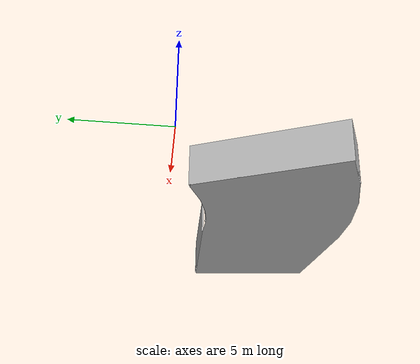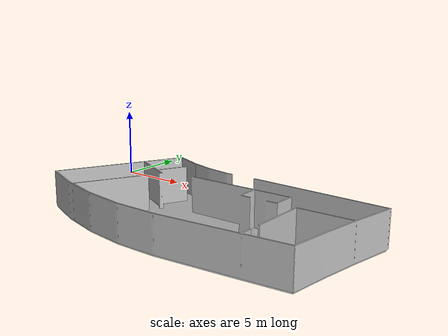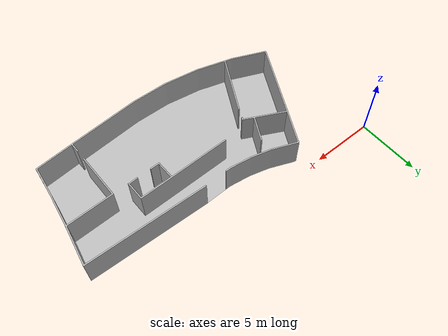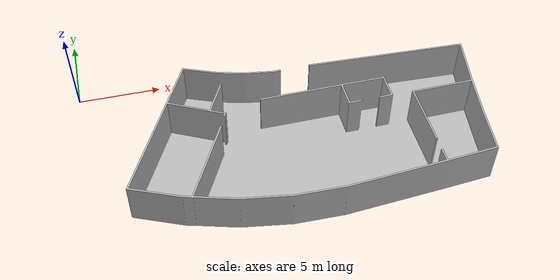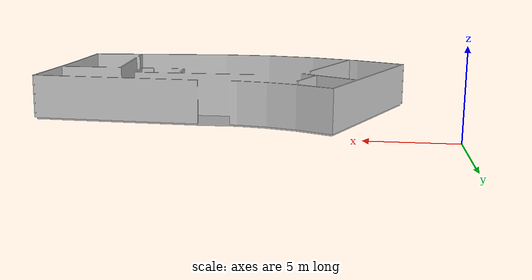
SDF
<?xml version='1.0' encoding='utf-8'?>
<sdf version="1.6">
  <model name="building_L1">
    <static>true</static>
    <link name="floor_1">
      <visual name="visual">
        <geometry>
          <mesh>
            <uri>model://building_L1/meshes/floor_1.obj</uri>
          </mesh>
        </geometry>
      </visual>
      <collision name="collision">
        <geometry>
          <mesh>
            <uri>model://building_L1/meshes/floor_1.obj</uri>
          </mesh>
        </geometry>
        <surface>
          <contact>
            <collide_bitmask>0x01</collide_bitmask>
          </contact>
        </surface>
      </collision>
    </link>
    <link name="walls">
      <visual name="walls_L1">
        <geometry>
          <mesh>
            <uri>model://building_L1/meshes/walls.obj</uri>
          </mesh>
        </geometry>
      </visual>
      <collision name="collision">
        <geometry>
          <mesh>
            <uri>model://building_L1/meshes/walls.obj</uri>
          </mesh>
        </geometry>
        <surface>
          <contact>
            <collide_bitmask>0x01</collide_bitmask>
          </contact>
        </surface>
      </collision>
    </link>
  </model>
</sdf>
